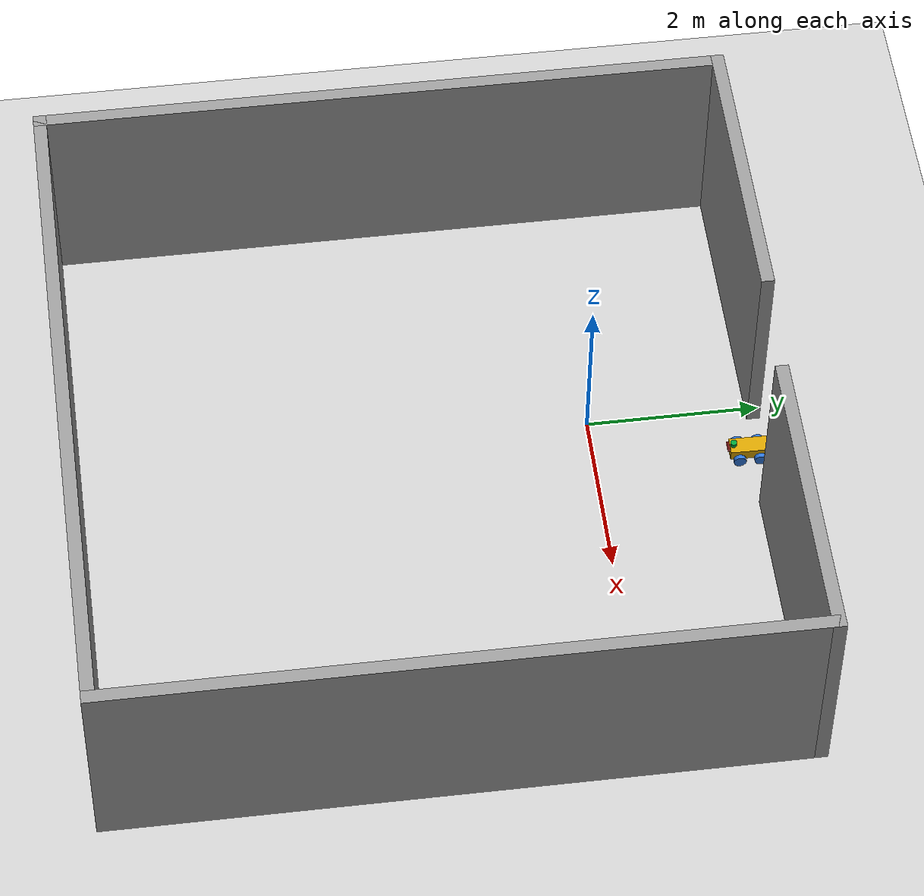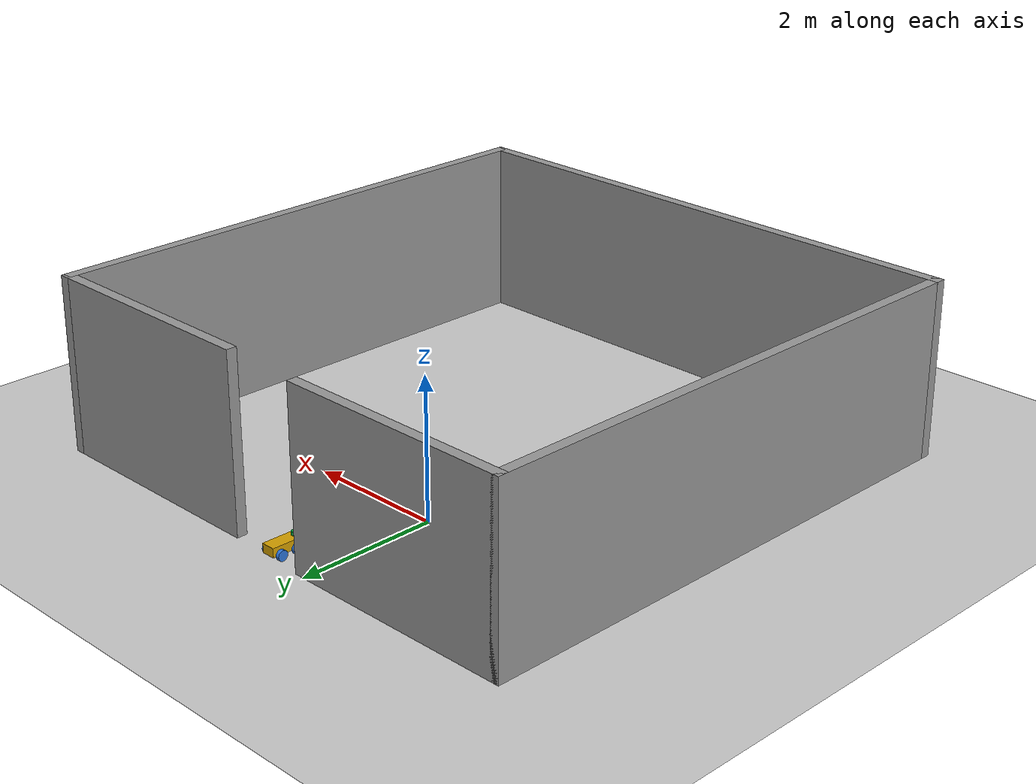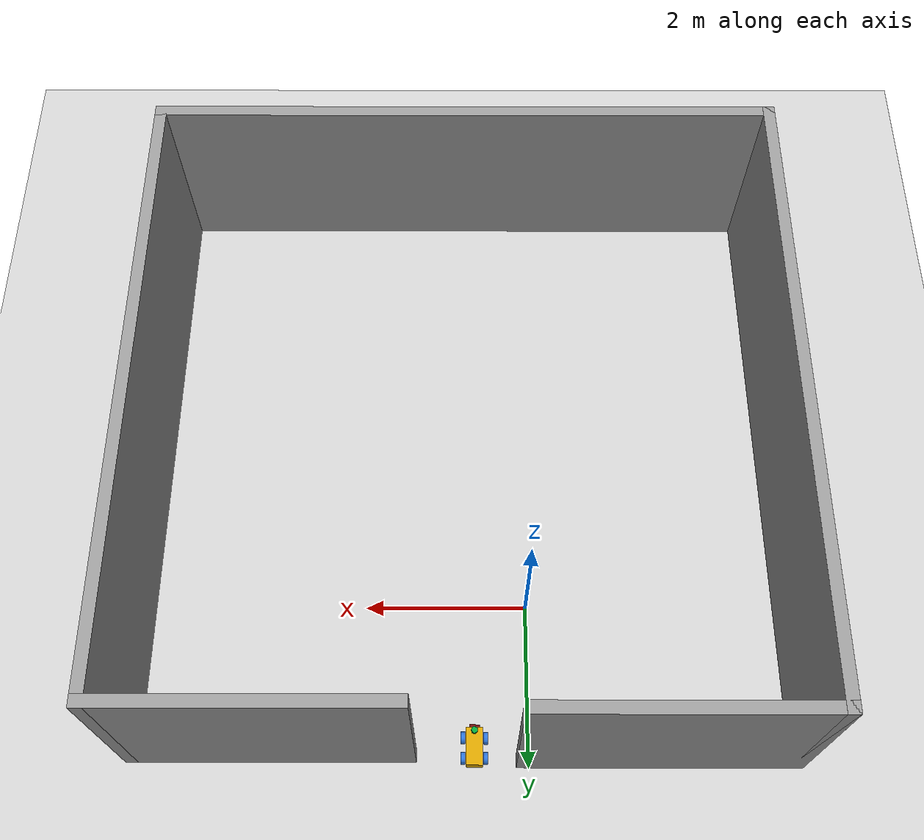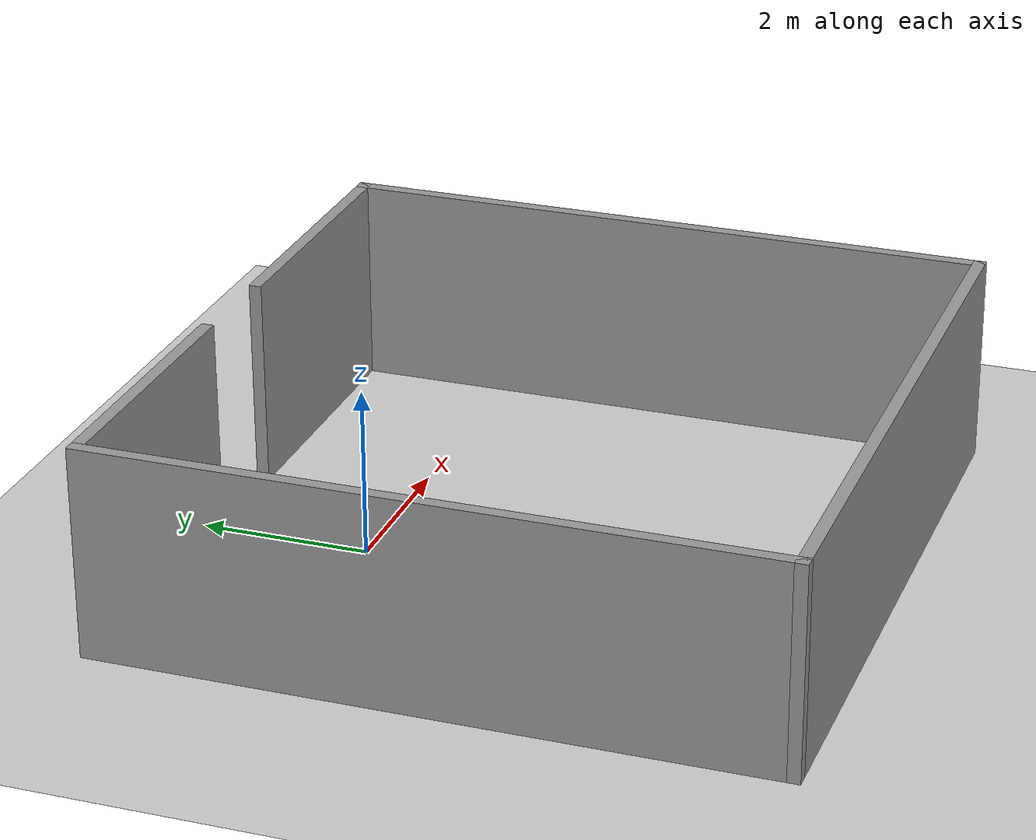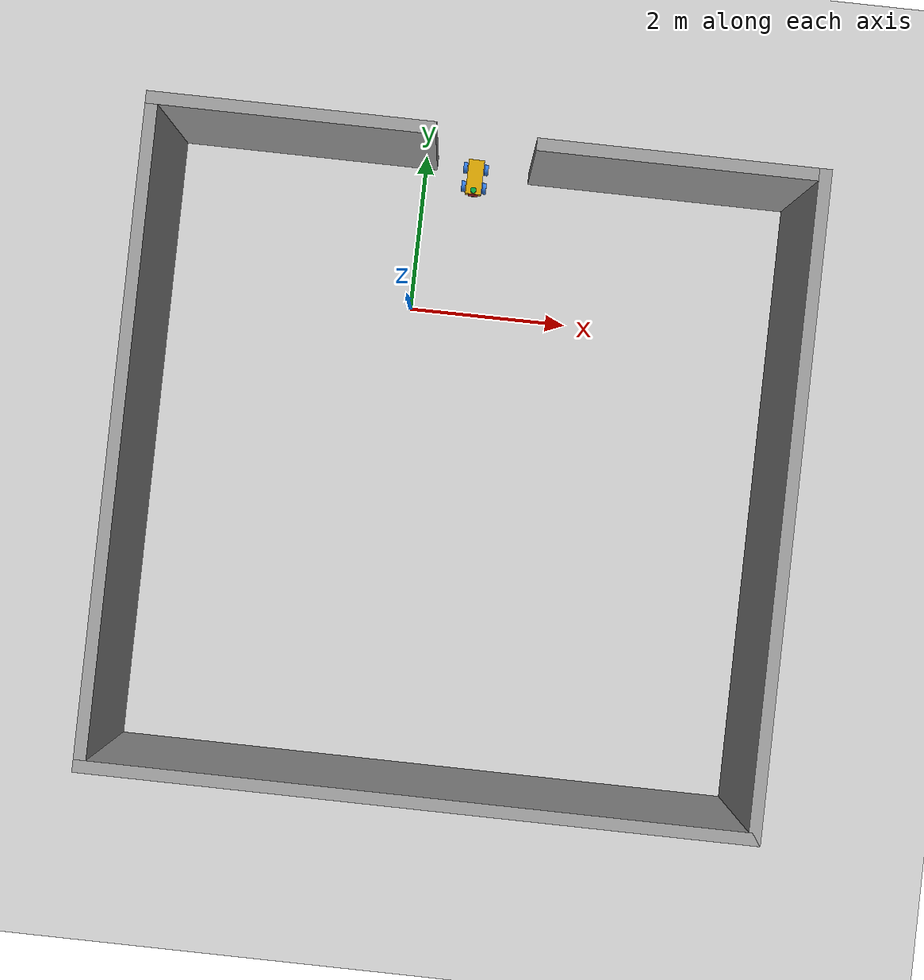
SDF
<sdf version="1.7">
 <world name="default">
  <light name="sun" type="directional">
   <pose>0 0 10 0 -0 0</pose>
   <diffuse>0.8 0.8 0.8 1</diffuse>
   <specular>0.2 0.2 0.2 1</specular>
   <attenuation>
    <range>1000</range>
    <constant>0.9</constant>
    <linear>0.01</linear>
    <quadratic>0.001</quadratic>
   </attenuation>
   <direction>-0.5 0.1 -0.9</direction>
   <spot><inner_angle>0</inner_angle><outer_angle>0</outer_angle><falloff>0</falloff></spot>
  </light>
  <model name="ground_plane">
   <static>1</static>
   <link name="link">
    <collision name="collision">
     <geometry><plane><normal>0 0 1</normal><size>100 100</size></plane></geometry>
     <surface><friction><ode><mu>100</mu><mu2>50</mu2></ode></friction></surface>
    </collision>
    <visual name="visual">
     <cast_shadows>0</cast_shadows>
     <geometry><plane><normal>0 0 1</normal><size>100 100</size></plane></geometry>
     <material>
      <script><uri>file://media/materials/scripts/gazebo.material</uri><name>Gazebo/Grey</name></script>
     </material>
    </visual>
   </link>
  </model>
  <gravity>0 0 -9.8</gravity>
  <magnetic_field>6e-06 2.3e-05 -4.2e-05</magnetic_field>
  <atmosphere type="adiabatic"/>
  <physics type="ode">
   <max_step_size>0.001</max_step_size>
   <real_time_factor>1</real_time_factor>
   <real_time_update_rate>1000</real_time_update_rate>
  </physics>
  <scene><ambient>0.4 0.4 0.4 1</ambient><background>0.7 0.7 0.7 1</background><shadows>1</shadows></scene>
  <audio><device>default</device></audio>
  <spherical_coordinates>
   <surface_model>EARTH_WGS84</surface_model>
   <latitude_deg>0</latitude_deg>
   <longitude_deg>0</longitude_deg>
   <elevation>0</elevation>
   <heading_deg>0</heading_deg>
  </spherical_coordinates>
  <model name="task3_4">
   <pose>0.76776 -2.0129 0 0 -0 0</pose>
   <link name="Wall_10">
    <collision name="Wall_10_Collision">
     <geometry><box><size>3.42 0.15 2.5</size></box></geometry>
     <pose>0 0 1.25 0 -0 0</pose>
    </collision>
    <visual name="Wall_10_Visual">
     <pose>0 0 1.25 0 -0 0</pose>
     <geometry><box><size>3.42 0.15 2.5</size></box></geometry>
     <material>
      <script><uri>file://media/materials/scripts/gazebo.material</uri><name>Gazebo/Grey</name></script>
      <ambient>1 1 1 1</ambient>
     </material>
     <meta><layer>0</layer></meta>
    </visual>
    <pose>-2.33 3.93 0 0 -0 0</pose>
   </link>
   <link name="Wall_13">
    <collision name="Wall_13_Collision">
     <geometry><box><size>7.95 0.15 2.5</size></box></geometry>
     <pose>0 0 1.25 0 -0 0</pose>
    </collision>
    <visual name="Wall_13_Visual">
     <pose>0 0 1.25 0 -0 0</pose>
     <geometry><box><size>7.95 0.15 2.5</size></box></geometry>
     <material>
      <script><uri>file://media/materials/scripts/gazebo.material</uri><name>Gazebo/Grey</name></script>
      <ambient>1 1 1 1</ambient>
     </material>
     <meta><layer>0</layer></meta>
    </visual>
    <pose>3.965 -0.03 0 0 -0 1.5708</pose>
   </link>
   <link name="Wall_15">
    <collision name="Wall_15_Collision">
     <geometry><box><size>3.47 0.15 2.5</size></box></geometry>
     <pose>0 0 1.25 0 -0 0</pose>
    </collision>
    <visual name="Wall_15_Visual">
     <pose>0 0 1.25 0 -0 0</pose>
     <geometry><box><size>3.47 0.15 2.5</size></box></geometry>
     <material>
      <script><uri>file://media/materials/scripts/gazebo.material</uri><name>Gazebo/Grey</name></script>
      <ambient>1 1 1 1</ambient>
     </material>
     <meta><layer>0</layer></meta>
    </visual>
    <pose>2.305 3.87 0 0 -0 3.14159</pose>
   </link>
   <link name="Wall_2">
    <collision name="Wall_2_Collision">
     <geometry><box><size>8.08 0.15 2.5</size></box></geometry>
     <pose>0 0 1.25 0 -0 0</pose>
    </collision>
    <visual name="Wall_2_Visual">
     <pose>0 0 1.25 0 -0 0</pose>
     <geometry><box><size>8.08 0.15 2.5</size></box></geometry>
     <material>
      <script><uri>file://media/materials/scripts/gazebo.material</uri><name>Gazebo/Grey</name></script>
      <ambient>1 1 1 1</ambient>
     </material>
     <meta><layer>0</layer></meta>
    </visual>
    <pose>0 -3.93 0 0 -0 3.14159</pose>
   </link>
   <link name="Wall_6">
    <collision name="Wall_6_Collision">
     <geometry><box><size>8.01 0.15 2.5</size></box></geometry>
     <pose>0 0 1.25 0 -0 0</pose>
    </collision>
    <visual name="Wall_6_Visual">
     <pose>0 0 1.25 0 -0 0</pose>
     <geometry><box><size>8.01 0.15 2.5</size></box></geometry>
     <material>
      <script><uri>file://media/materials/scripts/gazebo.material</uri><name>Gazebo/Grey</name></script>
      <ambient>1 1 1 1</ambient>
     </material>
     <meta><layer>0</layer></meta>
    </visual>
    <pose>-3.965 0 0 0 -0 1.5708</pose>
   </link>
   <static>1</static>
  </model>
  <model name="linorobot2">
   <link name="base_footprint">
    <inertial>
     <pose>0.004924 0 0.121332 0 -0 0</pose>
     <mass>10.235</mass>
     <inertia>
      <ixx>0.0491833</ixx>
      <ixy>0</ixy>
      <ixz>-0.00368767</ixz>
      <iyy>0.191476</iyy>
      <iyz>0</iyz>
      <izz>0.209361</izz>
     </inertia>
    </inertial>
    <collision name="base_footprint_fixed_joint_lump__base_link_collision">
     <pose>0 0 0.1195 0 -0 0</pose>
     <geometry><box><size>0.445 0.2 0.129</size></box></geometry>
    </collision>
    <collision name="base_footprint_fixed_joint_lump__camera_link_collision_1">
     <pose>0.24 0 0.1695 0 -0 0</pose>
     <geometry><box><size>0.03 0.124 0.03</size></box></geometry>
    </collision>
    <collision name="base_footprint_fixed_joint_lump__laser_collision_2">
     <pose>0.18 0 0.2145 0 -0 0</pose>
     <geometry><cylinder><length>0.05</length><radius>0.0375</radius></cylinder></geometry>
    </collision>
    <visual name="base_footprint_fixed_joint_lump__base_link_visual">
     <pose>0 0 0.1195 0 -0 0</pose>
     <geometry><box><size>0.445 0.2 0.129</size></box></geometry>
     <material>
      <ambient>0.8392 0.6314 0 1</ambient>
      <diffuse>0.8392 0.6314 0 1</diffuse>
      <specular>0.99 0.99 0.99 1</specular>
      <emissive>0 0 0 0</emissive>
     </material>
    </visual>
    <visual name="base_footprint_fixed_joint_lump__camera_link_visual_1">
     <pose>0.24 0 0.1695 0 -0 0</pose>
     <geometry><box><size>0.03 0.124 0.03</size></box></geometry>
     <material>
      <ambient>0.416 0.051 0.047 1</ambient>
      <diffuse>0.416 0.051 0.047 1</diffuse>
      <specular>0.416 0.051 0.047 1</specular>
      <emissive>0.416 0.051 0.047 1</emissive>
     </material>
    </visual>
    <visual name="base_footprint_fixed_joint_lump__laser_visual_2">
     <pose>0.18 0 0.2145 0 -0 0</pose>
     <geometry><cylinder><length>0.05</length><radius>0.0375</radius></cylinder></geometry>
     <material>
      <ambient>0.003 0.639 0.223 1</ambient>
      <diffuse>0.003 0.639 0.223 1</diffuse>
      <specular>0.003 0.639 0.223 1</specular>
      <emissive>0 0 0 0</emissive>
     </material>
    </visual>
    <sensor name="camera" type="depth">
     <always_on>1</always_on>
     <update_rate>30</update_rate>
     <camera name="camera">
      <horizontal_fov>1.50098</horizontal_fov>
      <image><width>640</width><height>480</height><format>R8G8B8</format></image>
      <clip><near>0.1</near><far>100</far></clip>
     </camera>
     <plugin name="camera_controller" filename="libgazebo_ros_camera.so">
      <ros>
       <remapping>/camera/camera_info:=/camera/color/camera_info</remapping>
       <remapping>/camera/image_raw:=/camera/color/image_raw</remapping>
       <remapping>/camera/points:=/camera/depth/color/points</remapping>
       <remapping>/camera/depth/image_raw:=/camera/depth/image_rect_raw</remapping>
       <qos>
        <topic name="/camera/depth/color/points"><publisher><reliability>best_effort</reliability></publisher></topic>
       </qos>
      </ros>
      <min_depth>0.015</min_depth>
      <max_depth>3.0</max_depth>
      <hack_baseline>0.07</hack_baseline>
      <frame_name>camera_depth_link</frame_name>
      <distortion_k1>0.00000001</distortion_k1>
      <distortion_k2>0.00000001</distortion_k2>
      <distortion_k3>0.00000001</distortion_k3>
      <distortion_t1>0.00000001</distortion_t1>
      <distortion_t2>0.00000001</distortion_t2>
     </plugin>
     <pose>0.24 0 0.1695 0 -0 0</pose>
    </sensor>
    <sensor name="imu_sensor" type="imu">
     <always_on>1</always_on>
     <update_rate>20</update_rate>
     <visualize>1</visualize>
     <topic>__default_topic__</topic>
     <plugin name="imu_plugin" filename="libgazebo_ros_imu_sensor.so">
      <ros><remapping>~/out:=imu/data</remapping></ros>
      <topicName>imu/data</topicName>
      <bodyName>imu_link</bodyName>
      <updateRateHZ>10.0</updateRateHZ>
      <gaussianNoise>0.0</gaussianNoise>
      <xyzOffset>0 0 0</xyzOffset>
      <rpyOffset>0 0 0</rpyOffset>
      <frameName>imu_link</frameName>
      <initialOrientationAsReference>0</initialOrientationAsReference>
     </plugin>
     <pose>0 0 0.1195 0 -0 0</pose>
    </sensor>
    <sensor name="laser_lidar" type="gpu_ray">
     <always_on>1</always_on>
     <update_rate>10</update_rate>
     <visualize>0</visualize>
     <ray>
      <scan>
       <horizontal>
        <samples>360</samples>
        <resolution>1</resolution>
        <min_angle>-3.1416</min_angle>
        <max_angle>3.1416</max_angle>
       </horizontal>
       <vertical><samples>1</samples><min_angle>0</min_angle><max_angle>0</max_angle></vertical>
      </scan>
      <range><min>0.08</min><max>12</max><resolution>0.01</resolution></range>
     </ray>
     <plugin name="laser_lidar_controller" filename="libgazebo_ros_ray_sensor.so">
      <ros><remapping>~/out:=scan</remapping></ros>
      <output_type>sensor_msgs/LaserScan</output_type>
      <alwaysOn>1</alwaysOn>
      <updateRate>10</updateRate>
      <topicName>scan</topicName>
      <frame_name>laser</frame_name>
      <output_type>sensor_msgs/LaserScan</output_type>
     </plugin>
     <pose>0.18 0 0.2395 0 -0 0</pose>
    </sensor>
   </link>
   <joint name="front_left_wheel_joint" type="revolute">
    <pose relative_to="base_footprint">0.12 0.1355 0.07162 0 -0 0</pose>
    <parent>base_footprint</parent>
    <child>front_left_wheel_link</child>
    <axis>
     <xyz>0 1 0</xyz>
     <limit><lower>-1e+16</lower><upper>1e+16</upper></limit>
     <dynamics><spring_reference>0</spring_reference><spring_stiffness>0</spring_stiffness></dynamics>
    </axis>
   </joint>
   <link name="front_left_wheel_link">
    <pose relative_to="front_left_wheel_joint">0 0 0 0 -0 0</pose>
    <inertial>
     <mass>0.6</mass>
     <inertia>
      <ixx>0.00123106</ixx>
      <ixy>0</ixy>
      <ixz>0</ixz>
      <iyy>0.00123106</iyy>
      <iyz>0</iyz>
      <izz>0.00123106</izz>
     </inertia>
    </inertial>
    <collision name="front_left_wheel_link_collision">
     <pose>0 0 0 1.5708 -0 0</pose>
     <geometry><cylinder><length>0.05</length><radius>0.07162</radius></cylinder></geometry>
    </collision>
    <visual name="front_left_wheel_link_visual">
     <pose>0 0 0 1.5708 -0 0</pose>
     <geometry><cylinder><length>0.05</length><radius>0.07162</radius></cylinder></geometry>
     <material>
      <ambient>0.1764 0.4588 0.8509 1</ambient>
      <diffuse>0.1764 0.4588 0.8509 1</diffuse>
      <specular>0.1764 0.4588 0.8509 1</specular>
      <emissive>0 0 0 0</emissive>
     </material>
    </visual>
   </link>
   <joint name="front_right_wheel_joint" type="revolute">
    <pose relative_to="base_footprint">0.12 -0.1355 0.07162 0 -0 0</pose>
    <parent>base_footprint</parent>
    <child>front_right_wheel_link</child>
    <axis>
     <xyz>0 1 0</xyz>
     <limit><lower>-1e+16</lower><upper>1e+16</upper></limit>
     <dynamics><spring_reference>0</spring_reference><spring_stiffness>0</spring_stiffness></dynamics>
    </axis>
   </joint>
   <link name="front_right_wheel_link">
    <pose relative_to="front_right_wheel_joint">0 0 0 0 -0 0</pose>
    <inertial>
     <mass>0.6</mass>
     <inertia>
      <ixx>0.00123106</ixx>
      <ixy>0</ixy>
      <ixz>0</ixz>
      <iyy>0.00123106</iyy>
      <iyz>0</iyz>
      <izz>0.00123106</izz>
     </inertia>
    </inertial>
    <collision name="front_right_wheel_link_collision">
     <pose>0 0 0 1.5708 -0 0</pose>
     <geometry><cylinder><length>0.05</length><radius>0.07162</radius></cylinder></geometry>
    </collision>
    <visual name="front_right_wheel_link_visual">
     <pose>0 0 0 1.5708 -0 0</pose>
     <geometry><cylinder><length>0.05</length><radius>0.07162</radius></cylinder></geometry>
     <material>
      <ambient>0.1764 0.4588 0.8509 1</ambient>
      <diffuse>0.1764 0.4588 0.8509 1</diffuse>
      <specular>0.1764 0.4588 0.8509 1</specular>
      <emissive>0 0 0 0</emissive>
     </material>
    </visual>
   </link>
   <joint name="rear_left_wheel_joint" type="revolute">
    <pose relative_to="base_footprint">-0.12 0.1355 0.07162 0 -0 0</pose>
    <parent>base_footprint</parent>
    <child>rear_left_wheel_link</child>
    <axis>
     <xyz>0 1 0</xyz>
     <limit><lower>-1e+16</lower><upper>1e+16</upper></limit>
     <dynamics><spring_reference>0</spring_reference><spring_stiffness>0</spring_stiffness></dynamics>
    </axis>
   </joint>
   <link name="rear_left_wheel_link">
    <pose relative_to="rear_left_wheel_joint">0 0 0 0 -0 0</pose>
    <inertial>
     <mass>0.6</mass>
     <inertia>
      <ixx>0.00123106</ixx>
      <ixy>0</ixy>
      <ixz>0</ixz>
      <iyy>0.00123106</iyy>
      <iyz>0</iyz>
      <izz>0.00123106</izz>
     </inertia>
    </inertial>
    <collision name="rear_left_wheel_link_collision">
     <pose>0 0 0 1.5708 -0 0</pose>
     <geometry><cylinder><length>0.05</length><radius>0.07162</radius></cylinder></geometry>
    </collision>
    <visual name="rear_left_wheel_link_visual">
     <pose>0 0 0 1.5708 -0 0</pose>
     <geometry><cylinder><length>0.05</length><radius>0.07162</radius></cylinder></geometry>
     <material>
      <ambient>0.1764 0.4588 0.8509 1</ambient>
      <diffuse>0.1764 0.4588 0.8509 1</diffuse>
      <specular>0.1764 0.4588 0.8509 1</specular>
      <emissive>0 0 0 0</emissive>
     </material>
    </visual>
   </link>
   <joint name="rear_right_wheel_joint" type="revolute">
    <pose relative_to="base_footprint">-0.12 -0.1355 0.07162 0 -0 0</pose>
    <parent>base_footprint</parent>
    <child>rear_right_wheel_link</child>
    <axis>
     <xyz>0 1 0</xyz>
     <limit><lower>-1e+16</lower><upper>1e+16</upper></limit>
     <dynamics><spring_reference>0</spring_reference><spring_stiffness>0</spring_stiffness></dynamics>
    </axis>
   </joint>
   <link name="rear_right_wheel_link">
    <pose relative_to="rear_right_wheel_joint">0 0 0 0 -0 0</pose>
    <inertial>
     <mass>0.6</mass>
     <inertia>
      <ixx>0.00123106</ixx>
      <ixy>0</ixy>
      <ixz>0</ixz>
      <iyy>0.00123106</iyy>
      <iyz>0</iyz>
      <izz>0.00123106</izz>
     </inertia>
    </inertial>
    <collision name="rear_right_wheel_link_collision">
     <pose>0 0 0 1.5708 -0 0</pose>
     <geometry><cylinder><length>0.05</length><radius>0.07162</radius></cylinder></geometry>
    </collision>
    <visual name="rear_right_wheel_link_visual">
     <pose>0 0 0 1.5708 -0 0</pose>
     <geometry><cylinder><length>0.05</length><radius>0.07162</radius></cylinder></geometry>
     <material>
      <ambient>0.1764 0.4588 0.8509 1</ambient>
      <diffuse>0.1764 0.4588 0.8509 1</diffuse>
      <specular>0.1764 0.4588 0.8509 1</specular>
      <emissive>0 0 0 0</emissive>
     </material>
    </visual>
   </link>
   <static>0</static>
   <plugin name="differential_drive_controller" filename="libgazebo_ros_diff_drive.so">
    <ros><remapping>odom:=odom/unfiltered</remapping></ros>
    <num_wheel_pairs>2</num_wheel_pairs>
    <left_joint>front_left_wheel_joint</left_joint>
    <right_joint>front_right_wheel_joint</right_joint>
    <left_joint>rear_left_wheel_joint</left_joint>
    <right_joint>rear_right_wheel_joint</right_joint>
    <wheel_separation>0.271</wheel_separation>
    <wheel_separation>0.271</wheel_separation>
    <wheel_diameter>0.14324</wheel_diameter>
    <wheel_diameter>0.14324</wheel_diameter>
    <updateRate>100</updateRate>
    <max_wheel_acceleration>1.0</max_wheel_acceleration>
    <robot_base_frame>base_footprint</robot_base_frame>
    <publish_odom>1</publish_odom>
    <publish_odom_tf>0</publish_odom_tf>
    <publish_wheel_tf>1</publish_wheel_tf>
    <odometry_frame>odom</odometry_frame>
   </plugin>
   <pose>0.646431 1.77492 1e-06 -1e-06 -0 -1.58425</pose>
  </model>
 </world>
</sdf>
